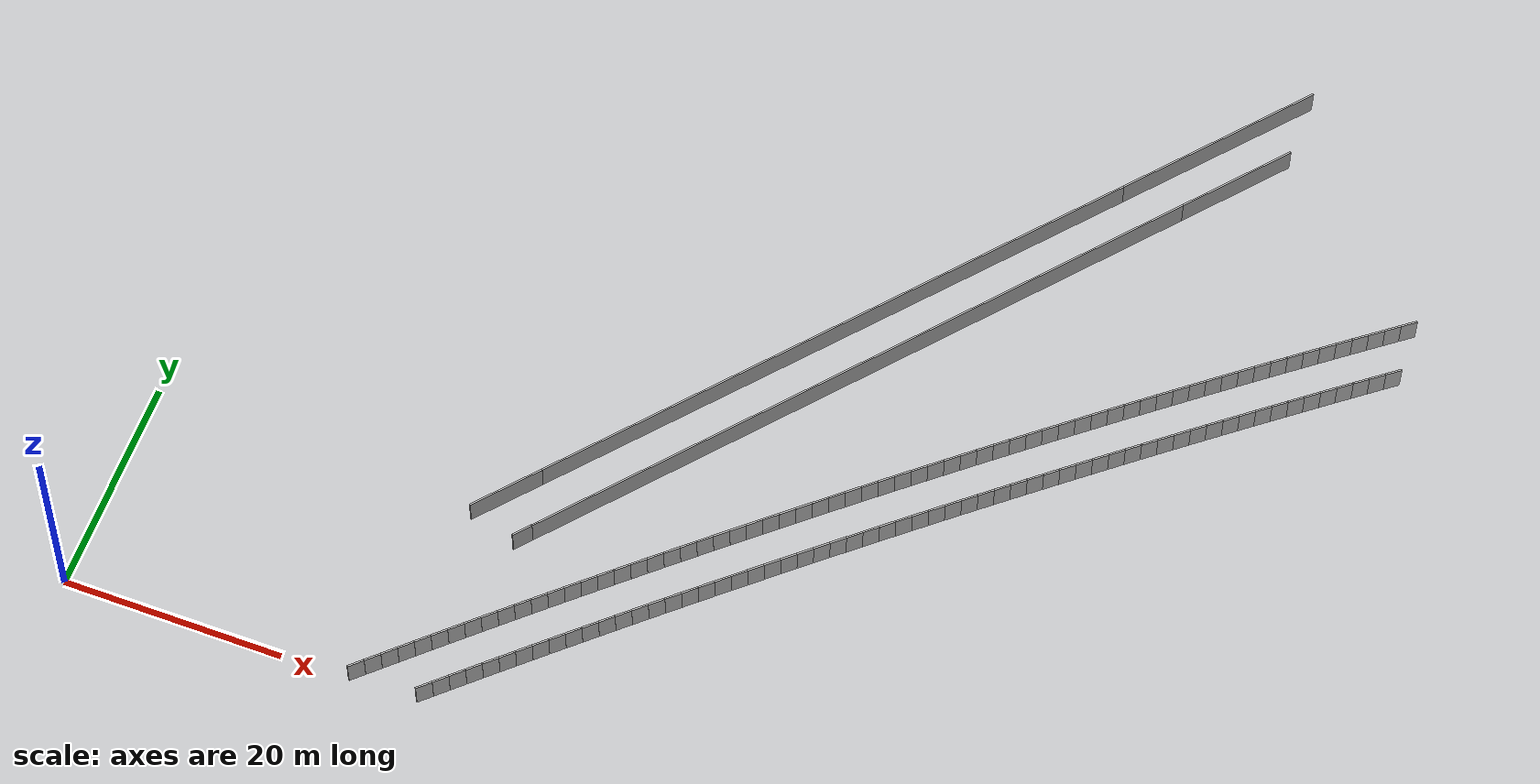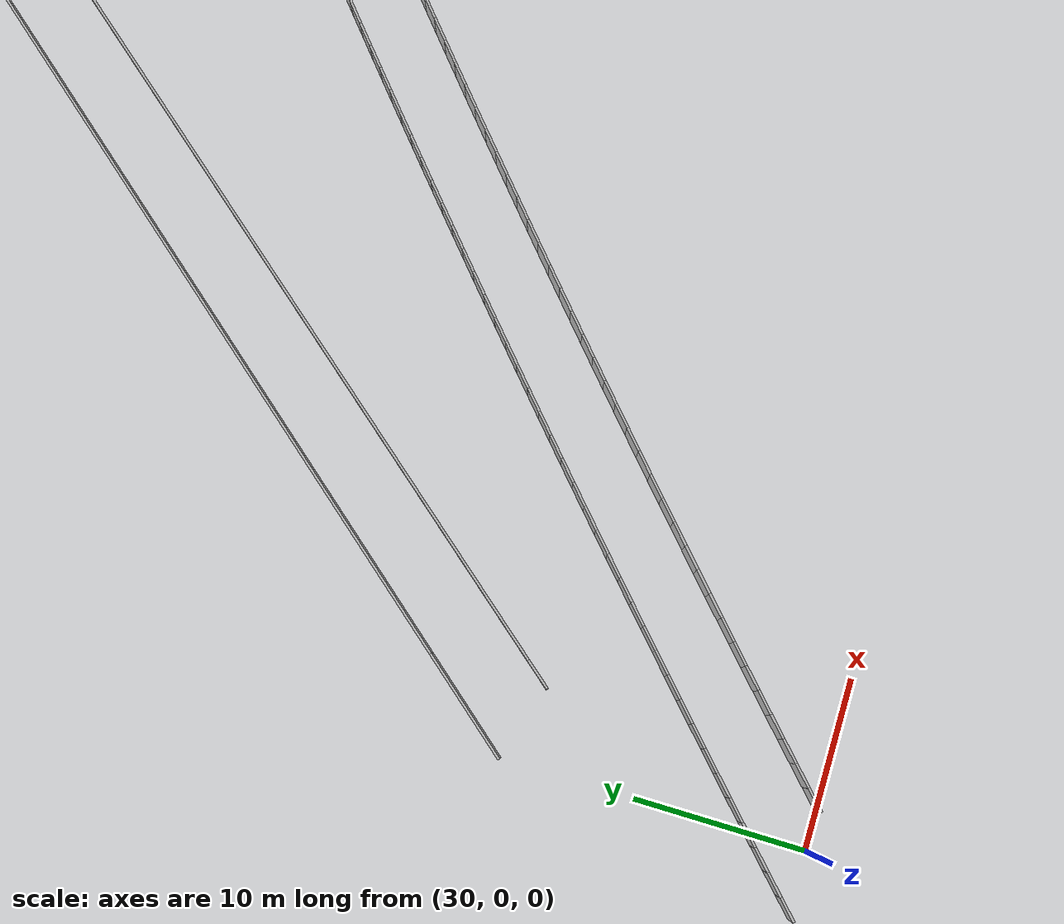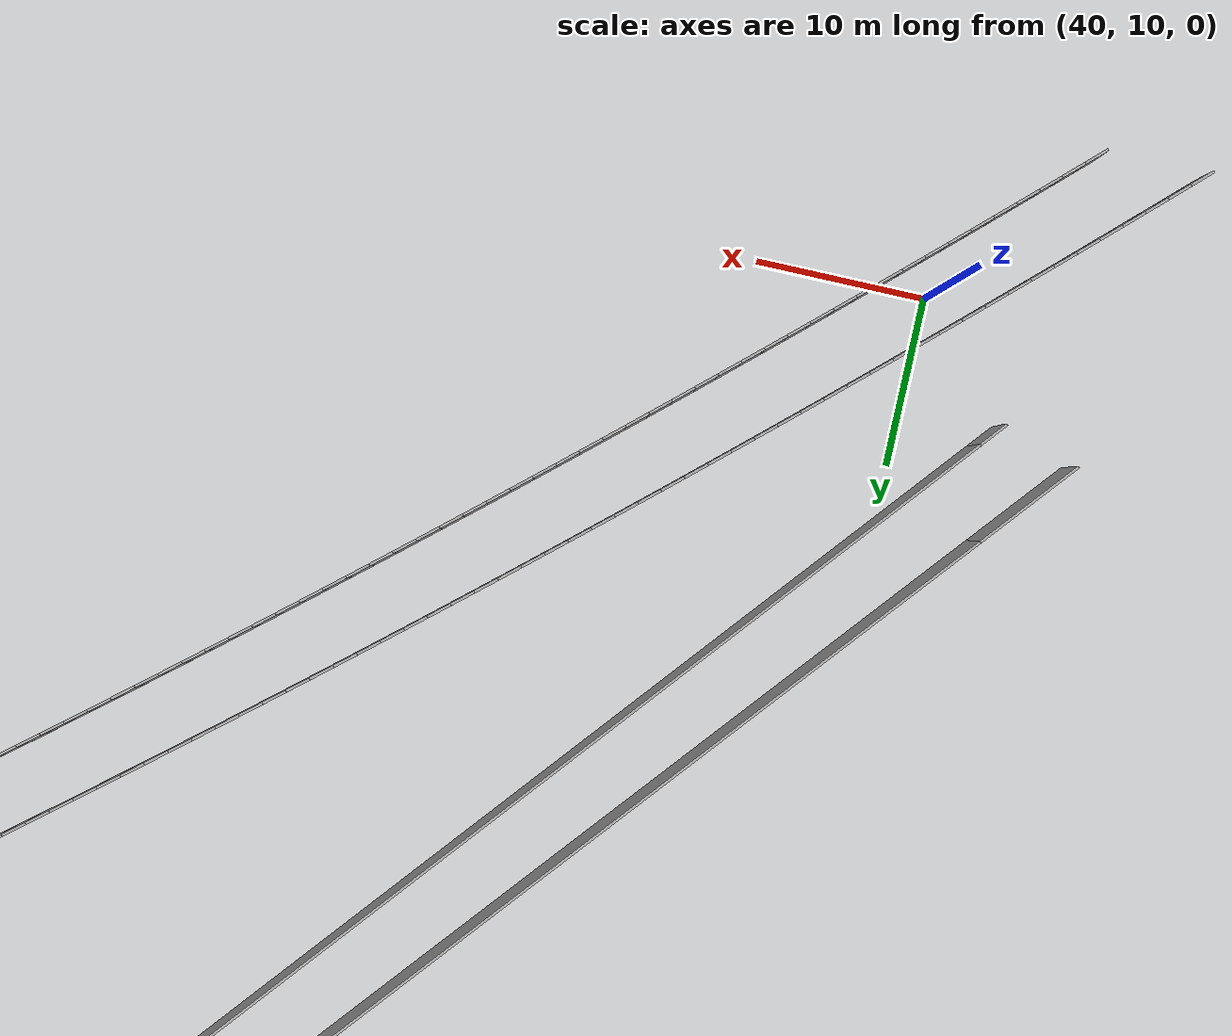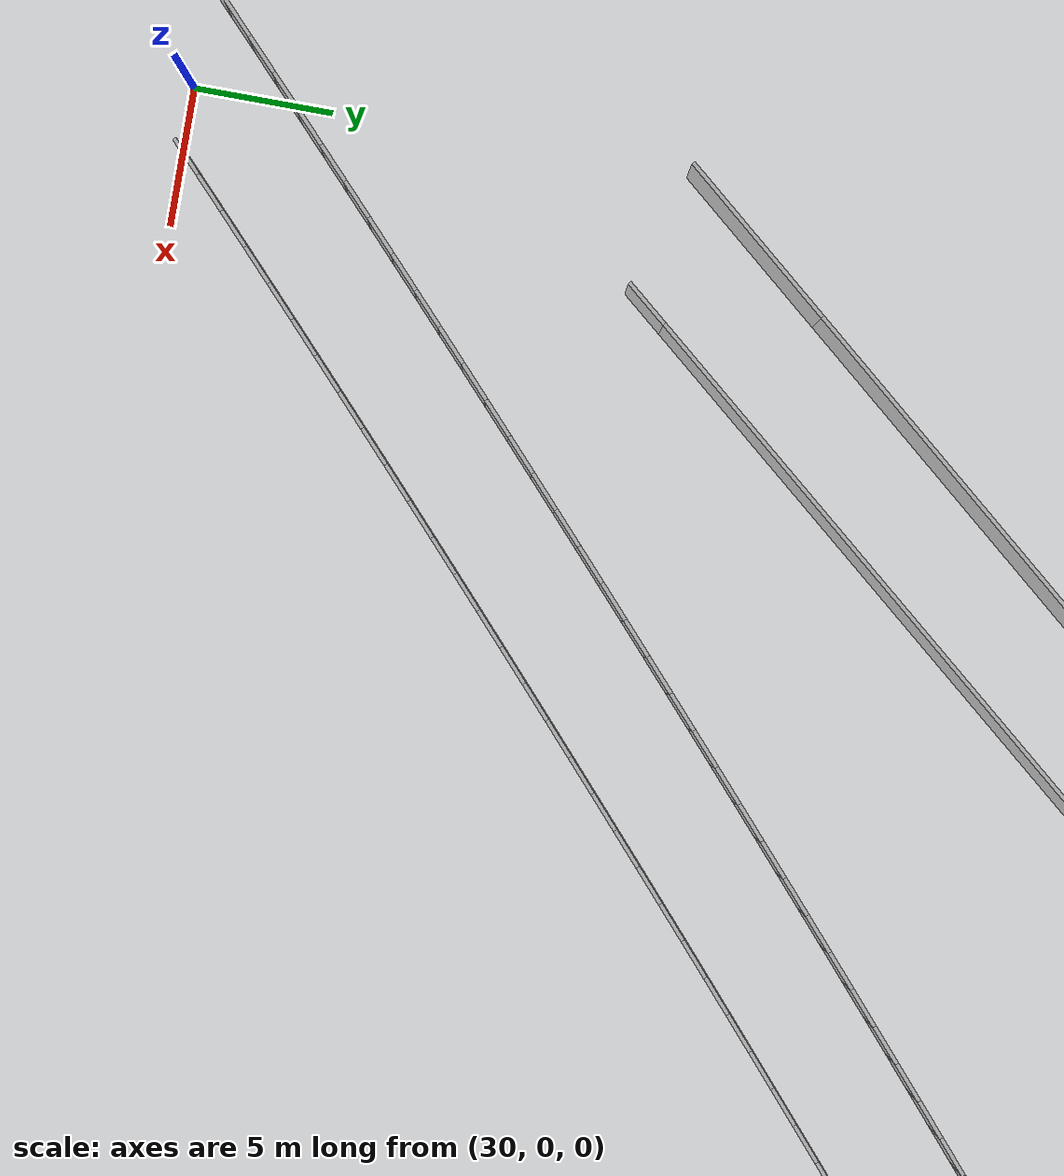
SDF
<sdf version="1.6">
 <model name="sps_0521">
  <static>1</static>
  <allow_auto_disable>0</allow_auto_disable>
  <link name="Wall213">
   <collision name="collision"><geometry><box><size>19.7398 0.15 2.5</size></box></geometry></collision>
   <visual name="visual">
    <geometry><box><size>19.7398 0.15 2.5</size></box></geometry>
    <transparency>0.0</transparency>
   </visual>
   <pose>78.1377 75.4643 1.25 0 0 -2.26727</pose>
  </link>
  <link name="Wall214">
   <collision name="collision"><geometry><box><size>58.2001 0.15 2.5</size></box></geometry></collision>
   <visual name="visual">
    <geometry><box><size>58.2001 0.15 2.5</size></box></geometry>
    <transparency>0.0</transparency>
   </visual>
   <pose>53.1377 45.5702 1.25 0 0 -2.26727</pose>
  </link>
  <link name="Wall215">
   <collision name="collision"><geometry><box><size>6.97983 0.15 2.5</size></box></geometry></collision>
   <visual name="visual">
    <geometry><box><size>6.97983 0.15 2.5</size></box></geometry>
    <transparency>0.0</transparency>
   </visual>
   <pose>32.2306 20.5702 1.25 0 0 -2.26727</pose>
  </link>
  <link name="Wall219">
   <collision name="collision"><geometry><box><size>1.88109 0.15 2.5</size></box></geometry></collision>
   <visual name="visual">
    <geometry><box><size>1.88109 0.15 2.5</size></box></geometry>
    <transparency>0.0</transparency>
   </visual>
   <pose>35.0712 17.1703 1.25 0 -0 0.876505</pose>
  </link>
  <link name="Wall220">
   <collision name="collision"><geometry><box><size>65.0612 0.15 2.5</size></box></geometry></collision>
   <visual name="visual">
    <geometry><box><size>65.0612 0.15 2.5</size></box></geometry>
    <transparency>0.0</transparency>
   </visual>
   <pose>56.4874 42.8931 1.25 0 -0 0.876505</pose>
  </link>
  <link name="Wall221">
   <collision name="collision"><geometry><box><size>11.2021 0.15 2.5</size></box></geometry></collision>
   <visual name="visual">
    <geometry><box><size>11.2021 0.15 2.5</size></box></geometry>
    <transparency>0.0</transparency>
   </visual>
   <pose>80.8857 72.1975 1.25 0 -0 0.876505</pose>
  </link>
  <link name="Wall3323">
   <collision name="collision"><geometry><box><size>1.49661 0.15 2.5</size></box></geometry></collision>
   <visual name="visual">
    <geometry><box><size>1.49661 0.15 2.5</size></box></geometry>
    <transparency>0.0</transparency>
   </visual>
   <pose>99.7113 58.1817 1.25 0 0 -2.47688</pose>
  </link>
  <link name="Wall3324">
   <collision name="collision"><geometry><box><size>1.4965 0.15 2.5</size></box></geometry></collision>
   <visual name="visual">
    <geometry><box><size>1.4965 0.15 2.5</size></box></geometry>
    <transparency>0.0</transparency>
   </visual>
   <pose>98.5341 57.2576 1.25 0 0 -2.47527</pose>
  </link>
  <link name="Wall3325">
   <collision name="collision"><geometry><box><size>1.49638 0.15 2.5</size></box></geometry></collision>
   <visual name="visual">
    <geometry><box><size>1.49638 0.15 2.5</size></box></geometry>
    <transparency>0.0</transparency>
   </visual>
   <pose>97.3585 56.3317 1.25 0 0 -2.47365</pose>
  </link>
  <link name="Wall3326">
   <collision name="collision"><geometry><box><size>1.49672 0.15 2.5</size></box></geometry></collision>
   <visual name="visual">
    <geometry><box><size>1.49672 0.15 2.5</size></box></geometry>
    <transparency>0.0</transparency>
   </visual>
   <pose>96.1843 55.4039 1.25 0 0 -2.47211</pose>
  </link>
  <link name="Wall3327">
   <collision name="collision"><geometry><box><size>1.49653 0.15 2.5</size></box></geometry></collision>
   <visual name="visual">
    <geometry><box><size>1.49653 0.15 2.5</size></box></geometry>
    <transparency>0.0</transparency>
   </visual>
   <pose>95.0114 54.4742 1.25 0 0 -2.4705</pose>
  </link>
  <link name="Wall3328">
   <collision name="collision"><geometry><box><size>1.49639 0.15 2.5</size></box></geometry></collision>
   <visual name="visual">
    <geometry><box><size>1.49639 0.15 2.5</size></box></geometry>
    <transparency>0.0</transparency>
   </visual>
   <pose>93.8402 53.5427 1.25 0 0 -2.46892</pose>
  </link>
  <link name="Wall3329">
   <collision name="collision"><geometry><box><size>1.4965 0.15 2.5</size></box></geometry></collision>
   <visual name="visual">
    <geometry><box><size>1.4965 0.15 2.5</size></box></geometry>
    <transparency>0.0</transparency>
   </visual>
   <pose>92.6706 52.6093 1.25 0 0 -2.46725</pose>
  </link>
  <link name="Wall3330">
   <collision name="collision"><geometry><box><size>1.4966 0.15 2.5</size></box></geometry></collision>
   <visual name="visual">
    <geometry><box><size>1.4966 0.15 2.5</size></box></geometry>
    <transparency>0.0</transparency>
   </visual>
   <pose>91.5023 51.674 1.25 0 0 -2.46574</pose>
  </link>
  <link name="Wall3331">
   <collision name="collision"><geometry><box><size>1.49647 0.15 2.5</size></box></geometry></collision>
   <visual name="visual">
    <geometry><box><size>1.49647 0.15 2.5</size></box></geometry>
    <transparency>0.0</transparency>
   </visual>
   <pose>90.3355 50.7369 1.25 0 0 -2.46415</pose>
  </link>
  <link name="Wall3332">
   <collision name="collision"><geometry><box><size>1.49638 0.15 2.5</size></box></geometry></collision>
   <visual name="visual">
    <geometry><box><size>1.49638 0.15 2.5</size></box></geometry>
    <transparency>0.0</transparency>
   </visual>
   <pose>89.1702 49.798 1.25 0 0 -2.46253</pose>
  </link>
  <link name="Wall3333">
   <collision name="collision"><geometry><box><size>1.49654 0.15 2.5</size></box></geometry></collision>
   <visual name="visual">
    <geometry><box><size>1.49654 0.15 2.5</size></box></geometry>
    <transparency>0.0</transparency>
   </visual>
   <pose>88.0064 48.8573 1.25 0 0 -2.4611</pose>
  </link>
  <link name="Wall3334">
   <collision name="collision"><geometry><box><size>1.49653 0.15 2.5</size></box></geometry></collision>
   <visual name="visual">
    <geometry><box><size>1.49653 0.15 2.5</size></box></geometry>
    <transparency>0.0</transparency>
   </visual>
   <pose>86.844 47.9147 1.25 0 0 -2.45936</pose>
  </link>
  <link name="Wall3335">
   <collision name="collision"><geometry><box><size>1.49647 0.15 2.5</size></box></geometry></collision>
   <visual name="visual">
    <geometry><box><size>1.49647 0.15 2.5</size></box></geometry>
    <transparency>0.0</transparency>
   </visual>
   <pose>85.6832 46.9702 1.25 0 0 -2.4578</pose>
  </link>
  <link name="Wall3336">
   <collision name="collision"><geometry><box><size>1.49649 0.15 2.5</size></box></geometry></collision>
   <visual name="visual">
    <geometry><box><size>1.49649 0.15 2.5</size></box></geometry>
    <transparency>0.0</transparency>
   </visual>
   <pose>84.5239 46.0239 1.25 0 0 -2.45623</pose>
  </link>
  <link name="Wall3337">
   <collision name="collision"><geometry><box><size>1.49642 0.15 2.5</size></box></geometry></collision>
   <visual name="visual">
    <geometry><box><size>1.49642 0.15 2.5</size></box></geometry>
    <transparency>0.0</transparency>
   </visual>
   <pose>83.3662 45.0758 1.25 0 0 -2.45461</pose>
  </link>
  <link name="Wall3338">
   <collision name="collision"><geometry><box><size>1.49651 0.15 2.5</size></box></geometry></collision>
   <visual name="visual">
    <geometry><box><size>1.49651 0.15 2.5</size></box></geometry>
    <transparency>0.0</transparency>
   </visual>
   <pose>82.2099 44.1259 1.25 0 0 -2.45313</pose>
  </link>
  <link name="Wall3339">
   <collision name="collision"><geometry><box><size>1.49648 0.15 2.5</size></box></geometry></collision>
   <visual name="visual">
    <geometry><box><size>1.49648 0.15 2.5</size></box></geometry>
    <transparency>0.0</transparency>
   </visual>
   <pose>81.055 43.1741 1.25 0 0 -2.45142</pose>
  </link>
  <link name="Wall3340">
   <collision name="collision"><geometry><box><size>1.49656 0.15 2.5</size></box></geometry></collision>
   <visual name="visual">
    <geometry><box><size>1.49656 0.15 2.5</size></box></geometry>
    <transparency>0.0</transparency>
   </visual>
   <pose>79.9018 42.2204 1.25 0 0 -2.44988</pose>
  </link>
  <link name="Wall3341">
   <collision name="collision"><geometry><box><size>1.49653 0.15 2.5</size></box></geometry></collision>
   <visual name="visual">
    <geometry><box><size>1.49653 0.15 2.5</size></box></geometry>
    <transparency>0.0</transparency>
   </visual>
   <pose>78.7499 41.265 1.25 0 0 -2.44844</pose>
  </link>
  <link name="Wall3342">
   <collision name="collision"><geometry><box><size>1.49617 0.15 2.5</size></box></geometry></collision>
   <visual name="visual">
    <geometry><box><size>1.49617 0.15 2.5</size></box></geometry>
    <transparency>0.0</transparency>
   </visual>
   <pose>77.5995 40.3081 1.25 0 0 -2.44707</pose>
  </link>
  <link name="Wall3343">
   <collision name="collision"><geometry><box><size>1.4965 0.15 2.5</size></box></geometry></collision>
   <visual name="visual">
    <geometry><box><size>1.4965 0.15 2.5</size></box></geometry>
    <transparency>0.0</transparency>
   </visual>
   <pose>76.4508 39.3492 1.25 0 0 -2.44496</pose>
  </link>
  <link name="Wall3344">
   <collision name="collision"><geometry><box><size>1.49644 0.15 2.5</size></box></geometry></collision>
   <visual name="visual">
    <geometry><box><size>1.49644 0.15 2.5</size></box></geometry>
    <transparency>0.0</transparency>
   </visual>
   <pose>75.3036 38.3882 1.25 0 0 -2.44355</pose>
  </link>
  <link name="Wall3345">
   <collision name="collision"><geometry><box><size>1.4965 0.15 2.5</size></box></geometry></collision>
   <visual name="visual">
    <geometry><box><size>1.4965 0.15 2.5</size></box></geometry>
    <transparency>0.0</transparency>
   </visual>
   <pose>74.158 37.4255 1.25 0 0 -2.44198</pose>
  </link>
  <link name="Wall3346">
   <collision name="collision"><geometry><box><size>1.49659 0.15 2.5</size></box></geometry></collision>
   <visual name="visual">
    <geometry><box><size>1.49659 0.15 2.5</size></box></geometry>
    <transparency>0.0</transparency>
   </visual>
   <pose>73.0138 36.4609 1.25 0 0 -2.44033</pose>
  </link>
  <link name="Wall3347">
   <collision name="collision"><geometry><box><size>1.49653 0.15 2.5</size></box></geometry></collision>
   <visual name="visual">
    <geometry><box><size>1.49653 0.15 2.5</size></box></geometry>
    <transparency>0.0</transparency>
   </visual>
   <pose>71.8711 35.4945 1.25 0 0 -2.43885</pose>
  </link>
  <link name="Wall3348">
   <collision name="collision"><geometry><box><size>1.49652 0.15 2.5</size></box></geometry></collision>
   <visual name="visual">
    <geometry><box><size>1.49652 0.15 2.5</size></box></geometry>
    <transparency>0.0</transparency>
   </visual>
   <pose>70.7299 34.5264 1.25 0 0 -2.43729</pose>
  </link>
  <link name="Wall3349">
   <collision name="collision"><geometry><box><size>1.49657 0.15 2.5</size></box></geometry></collision>
   <visual name="visual">
    <geometry><box><size>1.49657 0.15 2.5</size></box></geometry>
    <transparency>0.0</transparency>
   </visual>
   <pose>69.5902 33.5564 1.25 0 0 -2.43555</pose>
  </link>
  <link name="Wall3350">
   <collision name="collision"><geometry><box><size>1.49639 0.15 2.5</size></box></geometry></collision>
   <visual name="visual">
    <geometry><box><size>1.49639 0.15 2.5</size></box></geometry>
    <transparency>0.0</transparency>
   </visual>
   <pose>68.4522 32.5846 1.25 0 0 -2.43406</pose>
  </link>
  <link name="Wall3351">
   <collision name="collision"><geometry><box><size>1.49659 0.15 2.5</size></box></geometry></collision>
   <visual name="visual">
    <geometry><box><size>1.49659 0.15 2.5</size></box></geometry>
    <transparency>0.0</transparency>
   </visual>
   <pose>67.3158 31.611 1.25 0 0 -2.4324</pose>
  </link>
  <link name="Wall3352">
   <collision name="collision"><geometry><box><size>1.49646 0.15 2.5</size></box></geometry></collision>
   <visual name="visual">
    <geometry><box><size>1.49646 0.15 2.5</size></box></geometry>
    <transparency>0.0</transparency>
   </visual>
   <pose>66.1808 30.6356 1.25 0 0 -2.43093</pose>
  </link>
  <link name="Wall3353">
   <collision name="collision"><geometry><box><size>1.49642 0.15 2.5</size></box></geometry></collision>
   <visual name="visual">
    <geometry><box><size>1.49642 0.15 2.5</size></box></geometry>
    <transparency>0.0</transparency>
   </visual>
   <pose>65.0474 29.6585 1.25 0 0 -2.42934</pose>
  </link>
  <link name="Wall3354">
   <collision name="collision"><geometry><box><size>1.49651 0.15 2.5</size></box></geometry></collision>
   <visual name="visual">
    <geometry><box><size>1.49651 0.15 2.5</size></box></geometry>
    <transparency>0.0</transparency>
   </visual>
   <pose>63.9155 28.6796 1.25 0 0 -2.42778</pose>
  </link>
  <link name="Wall3355">
   <collision name="collision"><geometry><box><size>1.49649 0.15 2.5</size></box></geometry></collision>
   <visual name="visual">
    <geometry><box><size>1.49649 0.15 2.5</size></box></geometry>
    <transparency>0.0</transparency>
   </visual>
   <pose>62.7852 27.6988 1.25 0 0 -2.42599</pose>
  </link>
  <link name="Wall3356">
   <collision name="collision"><geometry><box><size>1.49652 0.15 2.5</size></box></geometry></collision>
   <visual name="visual">
    <geometry><box><size>1.49652 0.15 2.5</size></box></geometry>
    <transparency>0.0</transparency>
   </visual>
   <pose>61.6565 26.7162 1.25 0 0 -2.4246</pose>
  </link>
  <link name="Wall3357">
   <collision name="collision"><geometry><box><size>1.49648 0.15 2.5</size></box></geometry></collision>
   <visual name="visual">
    <geometry><box><size>1.49648 0.15 2.5</size></box></geometry>
    <transparency>0.0</transparency>
   </visual>
   <pose>60.5292 25.7319 1.25 0 0 -2.42295</pose>
  </link>
  <link name="Wall3358">
   <collision name="collision"><geometry><box><size>1.49659 0.15 2.5</size></box></geometry></collision>
   <visual name="visual">
    <geometry><box><size>1.49659 0.15 2.5</size></box></geometry>
    <transparency>0.0</transparency>
   </visual>
   <pose>59.4035 24.7458 1.25 0 0 -2.42144</pose>
  </link>
  <link name="Wall3359">
   <collision name="collision"><geometry><box><size>1.49639 0.15 2.5</size></box></geometry></collision>
   <visual name="visual">
    <geometry><box><size>1.49639 0.15 2.5</size></box></geometry>
    <transparency>0.0</transparency>
   </visual>
   <pose>58.2794 23.7579 1.25 0 0 -2.41975</pose>
  </link>
  <link name="Wall3360">
   <collision name="collision"><geometry><box><size>1.49659 0.15 2.5</size></box></geometry></collision>
   <visual name="visual">
    <geometry><box><size>1.49659 0.15 2.5</size></box></geometry>
    <transparency>0.0</transparency>
   </visual>
   <pose>57.1569 22.7682 1.25 0 0 -2.41824</pose>
  </link>
  <link name="Wall3361">
   <collision name="collision"><geometry><box><size>1.49641 0.15 2.5</size></box></geometry></collision>
   <visual name="visual">
    <geometry><box><size>1.49641 0.15 2.5</size></box></geometry>
    <transparency>0.0</transparency>
   </visual>
   <pose>56.0359 21.7768 1.25 0 0 -2.41671</pose>
  </link>
  <link name="Wall3362">
   <collision name="collision"><geometry><box><size>1.49656 0.15 2.5</size></box></geometry></collision>
   <visual name="visual">
    <geometry><box><size>1.49656 0.15 2.5</size></box></geometry>
    <transparency>0.0</transparency>
   </visual>
   <pose>54.9166 20.7836 1.25 0 0 -2.415</pose>
  </link>
  <link name="Wall3363">
   <collision name="collision"><geometry><box><size>1.49647 0.15 2.5</size></box></geometry></collision>
   <visual name="visual">
    <geometry><box><size>1.49647 0.15 2.5</size></box></geometry>
    <transparency>0.0</transparency>
   </visual>
   <pose>53.7988 19.7886 1.25 0 0 -2.41347</pose>
  </link>
  <link name="Wall3364">
   <collision name="collision"><geometry><box><size>1.49654 0.15 2.5</size></box></geometry></collision>
   <visual name="visual">
    <geometry><box><size>1.49654 0.15 2.5</size></box></geometry>
    <transparency>0.0</transparency>
   </visual>
   <pose>52.6825 18.7918 1.25 0 0 -2.41182</pose>
  </link>
  <link name="Wall3365">
   <collision name="collision"><geometry><box><size>1.49646 0.15 2.5</size></box></geometry></collision>
   <visual name="visual">
    <geometry><box><size>1.49646 0.15 2.5</size></box></geometry>
    <transparency>0.0</transparency>
   </visual>
   <pose>51.568 17.7932 1.25 0 0 -2.41024</pose>
  </link>
  <link name="Wall3366">
   <collision name="collision"><geometry><box><size>1.49646 0.15 2.5</size></box></geometry></collision>
   <visual name="visual">
    <geometry><box><size>1.49646 0.15 2.5</size></box></geometry>
    <transparency>0.0</transparency>
   </visual>
   <pose>50.4549 16.7929 1.25 0 0 -2.40871</pose>
  </link>
  <link name="Wall3367">
   <collision name="collision"><geometry><box><size>1.4966 0.15 2.5</size></box></geometry></collision>
   <visual name="visual">
    <geometry><box><size>1.4966 0.15 2.5</size></box></geometry>
    <transparency>0.0</transparency>
   </visual>
   <pose>49.3434 15.7908 1.25 0 0 -2.40714</pose>
  </link>
  <link name="Wall3368">
   <collision name="collision"><geometry><box><size>1.4964 0.15 2.5</size></box></geometry></collision>
   <visual name="visual">
    <geometry><box><size>1.4964 0.15 2.5</size></box></geometry>
    <transparency>0.0</transparency>
   </visual>
   <pose>48.2335 14.787 1.25 0 0 -2.40553</pose>
  </link>
  <link name="Wall3369">
   <collision name="collision"><geometry><box><size>1.49667 0.15 2.5</size></box></geometry></collision>
   <visual name="visual">
    <geometry><box><size>1.49667 0.15 2.5</size></box></geometry>
    <transparency>0.0</transparency>
   </visual>
   <pose>47.1252 13.7814 1.25 0 0 -2.40394</pose>
  </link>
  <link name="Wall3370">
   <collision name="collision"><geometry><box><size>1.49638 0.15 2.5</size></box></geometry></collision>
   <visual name="visual">
    <geometry><box><size>1.49638 0.15 2.5</size></box></geometry>
    <transparency>0.0</transparency>
   </visual>
   <pose>46.0185 12.774 1.25 0 0 -2.40233</pose>
  </link>
  <link name="Wall3371">
   <collision name="collision"><geometry><box><size>1.49663 0.15 2.5</size></box></geometry></collision>
   <visual name="visual">
    <geometry><box><size>1.49663 0.15 2.5</size></box></geometry>
    <transparency>0.0</transparency>
   </visual>
   <pose>44.9134 11.7649 1.25 0 0 -2.40082</pose>
  </link>
  <link name="Wall3372">
   <collision name="collision"><geometry><box><size>1.49635 0.15 2.5</size></box></geometry></collision>
   <visual name="visual">
    <geometry><box><size>1.49635 0.15 2.5</size></box></geometry>
    <transparency>0.0</transparency>
   </visual>
   <pose>43.8099 10.7541 1.25 0 0 -2.39921</pose>
  </link>
  <link name="Wall3373">
   <collision name="collision"><geometry><box><size>1.49655 0.15 2.5</size></box></geometry></collision>
   <visual name="visual">
    <geometry><box><size>1.49655 0.15 2.5</size></box></geometry>
    <transparency>0.0</transparency>
   </visual>
   <pose>42.708 9.74159 1.25 0 0 -2.39768</pose>
  </link>
  <link name="Wall3374">
   <collision name="collision"><geometry><box><size>1.49641 0.15 2.5</size></box></geometry></collision>
   <visual name="visual">
    <geometry><box><size>1.49641 0.15 2.5</size></box></geometry>
    <transparency>0.0</transparency>
   </visual>
   <pose>41.6077 8.72728 1.25 0 0 -2.39598</pose>
  </link>
  <link name="Wall3375">
   <collision name="collision"><geometry><box><size>1.49621 0.15 2.5</size></box></geometry></collision>
   <visual name="visual">
    <geometry><box><size>1.49621 0.15 2.5</size></box></geometry>
    <transparency>0.0</transparency>
   </visual>
   <pose>40.5091 7.7115 1.25 0 0 -2.3948</pose>
  </link>
  <link name="Wall3376">
   <collision name="collision"><geometry><box><size>1.4964 0.15 2.5</size></box></geometry></collision>
   <visual name="visual">
    <geometry><box><size>1.4964 0.15 2.5</size></box></geometry>
    <transparency>0.0</transparency>
   </visual>
   <pose>39.4119 6.69401 1.25 0 0 -2.39286</pose>
  </link>
  <link name="Wall3377">
   <collision name="collision"><geometry><box><size>1.49674 0.15 2.5</size></box></geometry></collision>
   <visual name="visual">
    <geometry><box><size>1.49674 0.15 2.5</size></box></geometry>
    <transparency>0.0</transparency>
   </visual>
   <pose>38.3165 5.67439 1.25 0 0 -2.39124</pose>
  </link>
  <link name="Wall3378">
   <collision name="collision"><geometry><box><size>1.49637 0.15 2.5</size></box></geometry></collision>
   <visual name="visual">
    <geometry><box><size>1.49637 0.15 2.5</size></box></geometry>
    <transparency>0.0</transparency>
   </visual>
   <pose>37.2226 4.65309 1.25 0 0 -2.38977</pose>
  </link>
  <link name="Wall3379">
   <collision name="collision"><geometry><box><size>1.49654 0.15 2.5</size></box></geometry></collision>
   <visual name="visual">
    <geometry><box><size>1.49654 0.15 2.5</size></box></geometry>
    <transparency>0.0</transparency>
   </visual>
   <pose>36.1304 3.63011 1.25 0 0 -2.38804</pose>
  </link>
  <link name="Wall3380">
   <collision name="collision"><geometry><box><size>1.49643 0.15 2.5</size></box></geometry></collision>
   <visual name="visual">
    <geometry><box><size>1.49643 0.15 2.5</size></box></geometry>
    <transparency>0.0</transparency>
   </visual>
   <pose>35.0398 2.60539 1.25 0 0 -2.38663</pose>
  </link>
  <link name="Wall3381">
   <collision name="collision"><geometry><box><size>1.49635 0.15 2.5</size></box></geometry></collision>
   <visual name="visual">
    <geometry><box><size>1.49635 0.15 2.5</size></box></geometry>
    <transparency>0.0</transparency>
   </visual>
   <pose>33.9509 1.57899 1.25 0 0 -2.38484</pose>
  </link>
  <link name="Wall3382">
   <collision name="collision"><geometry><box><size>1.49638 0.15 2.5</size></box></geometry></collision>
   <visual name="visual">
    <geometry><box><size>1.49638 0.15 2.5</size></box></geometry>
    <transparency>0.0</transparency>
   </visual>
   <pose>32.8636 0.550918 1.25 0 0 -2.38351</pose>
  </link>
  <link name="Wall5932">
   <collision name="collision"><geometry><box><size>1.50311 0.15 2.5</size></box></geometry></collision>
   <visual name="visual">
    <geometry><box><size>1.50311 0.15 2.5</size></box></geometry>
    <transparency>0.0</transparency>
   </visual>
   <pose>99.5163 63.283 1.25 0 0 -2.48006</pose>
  </link>
  <link name="Wall5933">
   <collision name="collision"><geometry><box><size>1.50305 0.15 2.5</size></box></geometry></collision>
   <visual name="visual">
    <geometry><box><size>1.50305 0.15 2.5</size></box></geometry>
    <transparency>0.0</transparency>
   </visual>
   <pose>98.331 62.3586 1.25 0 0 -2.47833</pose>
  </link>
  <link name="Wall5934">
   <collision name="collision"><geometry><box><size>1.50315 0.15 2.5</size></box></geometry></collision>
   <visual name="visual">
    <geometry><box><size>1.50315 0.15 2.5</size></box></geometry>
    <transparency>0.0</transparency>
   </visual>
   <pose>97.1474 61.4322 1.25 0 0 -2.47673</pose>
  </link>
  <link name="Wall5935">
   <collision name="collision"><geometry><box><size>1.50323 0.15 2.5</size></box></geometry></collision>
   <visual name="visual">
    <geometry><box><size>1.50323 0.15 2.5</size></box></geometry>
    <transparency>0.0</transparency>
   </visual>
   <pose>95.965 60.5039 1.25 0 0 -2.47522</pose>
  </link>
  <link name="Wall5936">
   <collision name="collision"><geometry><box><size>1.50295 0.15 2.5</size></box></geometry></collision>
   <visual name="visual">
    <geometry><box><size>1.50295 0.15 2.5</size></box></geometry>
    <transparency>0.0</transparency>
   </visual>
   <pose>94.7842 59.5739 1.25 0 0 -2.47368</pose>
  </link>
  <link name="Wall5937">
   <collision name="collision"><geometry><box><size>1.5032 0.15 2.5</size></box></geometry></collision>
   <visual name="visual">
    <geometry><box><size>1.5032 0.15 2.5</size></box></geometry>
    <transparency>0.0</transparency>
   </visual>
   <pose>93.6049 58.6421 1.25 0 0 -2.47216</pose>
  </link>
  <link name="Wall5938">
   <collision name="collision"><geometry><box><size>1.50303 0.15 2.5</size></box></geometry></collision>
   <visual name="visual">
    <geometry><box><size>1.50303 0.15 2.5</size></box></geometry>
    <transparency>0.0</transparency>
   </visual>
   <pose>92.427 57.7083 1.25 0 0 -2.47041</pose>
  </link>
  <link name="Wall5939">
   <collision name="collision"><geometry><box><size>1.50311 0.15 2.5</size></box></geometry></collision>
   <visual name="visual">
    <geometry><box><size>1.50311 0.15 2.5</size></box></geometry>
    <transparency>0.0</transparency>
   </visual>
   <pose>91.2507 56.7726 1.25 0 0 -2.46884</pose>
  </link>
  <link name="Wall5940">
   <collision name="collision"><geometry><box><size>1.50293 0.15 2.5</size></box></geometry></collision>
   <visual name="visual">
    <geometry><box><size>1.50293 0.15 2.5</size></box></geometry>
    <transparency>0.0</transparency>
   </visual>
   <pose>90.0759 55.8351 1.25 0 0 -2.4673</pose>
  </link>
  <link name="Wall5941">
   <collision name="collision"><geometry><box><size>1.50302 0.15 2.5</size></box></geometry></collision>
   <visual name="visual">
    <geometry><box><size>1.50302 0.15 2.5</size></box></geometry>
    <transparency>0.0</transparency>
   </visual>
   <pose>88.9025 54.8958 1.25 0 0 -2.46573</pose>
  </link>
  <link name="Wall5942">
   <collision name="collision"><geometry><box><size>1.50315 0.15 2.5</size></box></geometry></collision>
   <visual name="visual">
    <geometry><box><size>1.50315 0.15 2.5</size></box></geometry>
    <transparency>0.0</transparency>
   </visual>
   <pose>87.7306 53.9546 1.25 0 0 -2.46413</pose>
  </link>
  <link name="Wall5943">
   <collision name="collision"><geometry><box><size>1.50317 0.15 2.5</size></box></geometry></collision>
   <visual name="visual">
    <geometry><box><size>1.50317 0.15 2.5</size></box></geometry>
    <transparency>0.0</transparency>
   </visual>
   <pose>86.5601 53.0115 1.25 0 0 -2.46263</pose>
  </link>
  <link name="Wall5944">
   <collision name="collision"><geometry><box><size>1.5032 0.15 2.5</size></box></geometry></collision>
   <visual name="visual">
    <geometry><box><size>1.5032 0.15 2.5</size></box></geometry>
    <transparency>0.0</transparency>
   </visual>
   <pose>85.3911 52.0665 1.25 0 0 -2.46092</pose>
  </link>
  <link name="Wall5945">
   <collision name="collision"><geometry><box><size>1.50296 0.15 2.5</size></box></geometry></collision>
   <visual name="visual">
    <geometry><box><size>1.50296 0.15 2.5</size></box></geometry>
    <transparency>0.0</transparency>
   </visual>
   <pose>84.2237 51.1197 1.25 0 0 -2.45938</pose>
  </link>
  <link name="Wall5946">
   <collision name="collision"><geometry><box><size>1.50315 0.15 2.5</size></box></geometry></collision>
   <visual name="visual">
    <geometry><box><size>1.50315 0.15 2.5</size></box></geometry>
    <transparency>0.0</transparency>
   </visual>
   <pose>83.0579 50.1711 1.25 0 0 -2.45781</pose>
  </link>
  <link name="Wall5947">
   <collision name="collision"><geometry><box><size>1.50317 0.15 2.5</size></box></geometry></collision>
   <visual name="visual">
    <geometry><box><size>1.50317 0.15 2.5</size></box></geometry>
    <transparency>0.0</transparency>
   </visual>
   <pose>81.8934 49.2206 1.25 0 0 -2.45625</pose>
  </link>
  <link name="Wall5948">
   <collision name="collision"><geometry><box><size>1.50297 0.15 2.5</size></box></geometry></collision>
   <visual name="visual">
    <geometry><box><size>1.50297 0.15 2.5</size></box></geometry>
    <transparency>0.0</transparency>
   </visual>
   <pose>80.7305 48.2683 1.25 0 0 -2.45462</pose>
  </link>
  <link name="Wall5949">
   <collision name="collision"><geometry><box><size>1.503 0.15 2.5</size></box></geometry></collision>
   <visual name="visual">
    <geometry><box><size>1.503 0.15 2.5</size></box></geometry>
    <transparency>0.0</transparency>
   </visual>
   <pose>79.5691 47.3142 1.25 0 0 -2.45306</pose>
  </link>
  <link name="Wall5950">
   <collision name="collision"><geometry><box><size>1.50316 0.15 2.5</size></box></geometry></collision>
   <visual name="visual">
    <geometry><box><size>1.50316 0.15 2.5</size></box></geometry>
    <transparency>0.0</transparency>
   </visual>
   <pose>78.4093 46.3582 1.25 0 0 -2.45146</pose>
  </link>
  <link name="Wall5951">
   <collision name="collision"><geometry><box><size>1.5031 0.15 2.5</size></box></geometry></collision>
   <visual name="visual">
    <geometry><box><size>1.5031 0.15 2.5</size></box></geometry>
    <transparency>0.0</transparency>
   </visual>
   <pose>77.2509 45.4003 1.25 0 0 -2.44985</pose>
  </link>
  <link name="Wall5952">
   <collision name="collision"><geometry><box><size>1.50305 0.15 2.5</size></box></geometry></collision>
   <visual name="visual">
    <geometry><box><size>1.50305 0.15 2.5</size></box></geometry>
    <transparency>0.0</transparency>
   </visual>
   <pose>76.0941 44.4406 1.25 0 0 -2.44824</pose>
  </link>
  <link name="Wall5953">
   <collision name="collision"><geometry><box><size>1.5031 0.15 2.5</size></box></geometry></collision>
   <visual name="visual">
    <geometry><box><size>1.5031 0.15 2.5</size></box></geometry>
    <transparency>0.0</transparency>
   </visual>
   <pose>74.9388 43.4791 1.25 0 0 -2.44673</pose>
  </link>
  <link name="Wall5954">
   <collision name="collision"><geometry><box><size>1.50302 0.15 2.5</size></box></geometry></collision>
   <visual name="visual">
    <geometry><box><size>1.50302 0.15 2.5</size></box></geometry>
    <transparency>0.0</transparency>
   </visual>
   <pose>73.785 42.5158 1.25 0 0 -2.44515</pose>
  </link>
  <link name="Wall5955">
   <collision name="collision"><geometry><box><size>1.50324 0.15 2.5</size></box></geometry></collision>
   <visual name="visual">
    <geometry><box><size>1.50324 0.15 2.5</size></box></geometry>
    <transparency>0.0</transparency>
   </visual>
   <pose>72.6327 41.5506 1.25 0 0 -2.44353</pose>
  </link>
  <link name="Wall5956">
   <collision name="collision"><geometry><box><size>1.50276 0.15 2.5</size></box></geometry></collision>
   <visual name="visual">
    <geometry><box><size>1.50276 0.15 2.5</size></box></geometry>
    <transparency>0.0</transparency>
   </visual>
   <pose>71.4819 40.5838 1.25 0 0 -2.4422</pose>
  </link>
  <link name="Wall5957">
   <collision name="collision"><geometry><box><size>1.50301 0.15 2.5</size></box></geometry></collision>
   <visual name="visual">
    <geometry><box><size>1.50301 0.15 2.5</size></box></geometry>
    <transparency>0.0</transparency>
   </visual>
   <pose>70.3327 39.6153 1.25 0 0 -2.44043</pose>
  </link>
  <link name="Wall5958">
   <collision name="collision"><geometry><box><size>1.50307 0.15 2.5</size></box></geometry></collision>
   <visual name="visual">
    <geometry><box><size>1.50307 0.15 2.5</size></box></geometry>
    <transparency>0.0</transparency>
   </visual>
   <pose>69.185 38.6448 1.25 0 0 -2.43887</pose>
  </link>
  <link name="Wall5959">
   <collision name="collision"><geometry><box><size>1.50317 0.15 2.5</size></box></geometry></collision>
   <visual name="visual">
    <geometry><box><size>1.50317 0.15 2.5</size></box></geometry>
    <transparency>0.0</transparency>
   </visual>
   <pose>68.0387 37.6724 1.25 0 0 -2.43722</pose>
  </link>
  <link name="Wall5960">
   <collision name="collision"><geometry><box><size>1.50311 0.15 2.5</size></box></geometry></collision>
   <visual name="visual">
    <geometry><box><size>1.50311 0.15 2.5</size></box></geometry>
    <transparency>0.0</transparency>
   </visual>
   <pose>66.8941 36.6981 1.25 0 0 -2.43558</pose>
  </link>
  <link name="Wall5961">
   <collision name="collision"><geometry><box><size>1.503 0.15 2.5</size></box></geometry></collision>
   <visual name="visual">
    <geometry><box><size>1.503 0.15 2.5</size></box></geometry>
    <transparency>0.0</transparency>
   </visual>
   <pose>65.7512 35.722 1.25 0 0 -2.43398</pose>
  </link>
  <link name="Wall5962">
   <collision name="collision"><geometry><box><size>1.50313 0.15 2.5</size></box></geometry></collision>
   <visual name="visual">
    <geometry><box><size>1.50313 0.15 2.5</size></box></geometry>
    <transparency>0.0</transparency>
   </visual>
   <pose>64.6097 34.7441 1.25 0 0 -2.4325</pose>
  </link>
  <link name="Wall5963">
   <collision name="collision"><geometry><box><size>1.50299 0.15 2.5</size></box></geometry></collision>
   <visual name="visual">
    <geometry><box><size>1.50299 0.15 2.5</size></box></geometry>
    <transparency>0.0</transparency>
   </visual>
   <pose>63.4697 33.7644 1.25 0 0 -2.43081</pose>
  </link>
  <link name="Wall5964">
   <collision name="collision"><geometry><box><size>1.50321 0.15 2.5</size></box></geometry></collision>
   <visual name="visual">
    <geometry><box><size>1.50321 0.15 2.5</size></box></geometry>
    <transparency>0.0</transparency>
   </visual>
   <pose>62.3314 32.7829 1.25 0 0 -2.42933</pose>
  </link>
  <link name="Wall5965">
   <collision name="collision"><geometry><box><size>1.50308 0.15 2.5</size></box></geometry></collision>
   <visual name="visual">
    <geometry><box><size>1.50308 0.15 2.5</size></box></geometry>
    <transparency>0.0</transparency>
   </visual>
   <pose>61.1944 31.7996 1.25 0 0 -2.42769</pose>
  </link>
  <link name="Wall5966">
   <collision name="collision"><geometry><box><size>1.50305 0.15 2.5</size></box></geometry></collision>
   <visual name="visual">
    <geometry><box><size>1.50305 0.15 2.5</size></box></geometry>
    <transparency>0.0</transparency>
   </visual>
   <pose>60.0591 30.8146 1.25 0 0 -2.42623</pose>
  </link>
  <link name="Wall5967">
   <collision name="collision"><geometry><box><size>1.503 0.15 2.5</size></box></geometry></collision>
   <visual name="visual">
    <geometry><box><size>1.503 0.15 2.5</size></box></geometry>
    <transparency>0.0</transparency>
   </visual>
   <pose>58.9254 29.8278 1.25 0 0 -2.42447</pose>
  </link>
  <link name="Wall5968">
   <collision name="collision"><geometry><box><size>1.50306 0.15 2.5</size></box></geometry></collision>
   <visual name="visual">
    <geometry><box><size>1.50306 0.15 2.5</size></box></geometry>
    <transparency>0.0</transparency>
   </visual>
   <pose>57.7934 28.8391 1.25 0 0 -2.42295</pose>
  </link>
  <link name="Wall5969">
   <collision name="collision"><geometry><box><size>1.50312 0.15 2.5</size></box></geometry></collision>
   <visual name="visual">
    <geometry><box><size>1.50312 0.15 2.5</size></box></geometry>
    <transparency>0.0</transparency>
   </visual>
   <pose>56.6628 27.8486 1.25 0 0 -2.42136</pose>
  </link>
  <link name="Wall5970">
   <collision name="collision"><geometry><box><size>1.50315 0.15 2.5</size></box></geometry></collision>
   <visual name="visual">
    <geometry><box><size>1.50315 0.15 2.5</size></box></geometry>
    <transparency>0.0</transparency>
   </visual>
   <pose>55.5337 26.8564 1.25 0 0 -2.41992</pose>
  </link>
  <link name="Wall5971">
   <collision name="collision"><geometry><box><size>1.50307 0.15 2.5</size></box></geometry></collision>
   <visual name="visual">
    <geometry><box><size>1.50307 0.15 2.5</size></box></geometry>
    <transparency>0.0</transparency>
   </visual>
   <pose>54.4062 25.8624 1.25 0 0 -2.41814</pose>
  </link>
  <link name="Wall5972">
   <collision name="collision"><geometry><box><size>1.50305 0.15 2.5</size></box></geometry></collision>
   <visual name="visual">
    <geometry><box><size>1.50305 0.15 2.5</size></box></geometry>
    <transparency>0.0</transparency>
   </visual>
   <pose>53.2804 24.8665 1.25 0 0 -2.41656</pose>
  </link>
  <link name="Wall5973">
   <collision name="collision"><geometry><box><size>1.50296 0.15 2.5</size></box></geometry></collision>
   <visual name="visual">
    <geometry><box><size>1.50296 0.15 2.5</size></box></geometry>
    <transparency>0.0</transparency>
   </visual>
   <pose>52.1562 23.8689 1.25 0 0 -2.41504</pose>
  </link>
  <link name="Wall5974">
   <collision name="collision"><geometry><box><size>1.50325 0.15 2.5</size></box></geometry></collision>
   <visual name="visual">
    <geometry><box><size>1.50325 0.15 2.5</size></box></geometry>
    <transparency>0.0</transparency>
   </visual>
   <pose>51.0334 22.8695 1.25 0 0 -2.41342</pose>
  </link>
  <link name="Wall5975">
   <collision name="collision"><geometry><box><size>1.50294 0.15 2.5</size></box></geometry></collision>
   <visual name="visual">
    <geometry><box><size>1.50294 0.15 2.5</size></box></geometry>
    <transparency>0.0</transparency>
   </visual>
   <pose>49.9123 21.8683 1.25 0 0 -2.41182</pose>
  </link>
  <link name="Wall5976">
   <collision name="collision"><geometry><box><size>1.50308 0.15 2.5</size></box></geometry></collision>
   <visual name="visual">
    <geometry><box><size>1.50308 0.15 2.5</size></box></geometry>
    <transparency>0.0</transparency>
   </visual>
   <pose>48.7929 20.8654 1.25 0 0 -2.41032</pose>
  </link>
  <link name="Wall5977">
   <collision name="collision"><geometry><box><size>1.50317 0.15 2.5</size></box></geometry></collision>
   <visual name="visual">
    <geometry><box><size>1.50317 0.15 2.5</size></box></geometry>
    <transparency>0.0</transparency>
   </visual>
   <pose>47.6749 19.8607 1.25 0 0 -2.40873</pose>
  </link>
  <link name="Wall5978">
   <collision name="collision"><geometry><box><size>1.50313 0.15 2.5</size></box></geometry></collision>
   <visual name="visual">
    <geometry><box><size>1.50313 0.15 2.5</size></box></geometry>
    <transparency>0.0</transparency>
   </visual>
   <pose>46.5584 18.8542 1.25 0 0 -2.40712</pose>
  </link>
  <link name="Wall5979">
   <collision name="collision"><geometry><box><size>1.50326 0.15 2.5</size></box></geometry></collision>
   <visual name="visual">
    <geometry><box><size>1.50326 0.15 2.5</size></box></geometry>
    <transparency>0.0</transparency>
   </visual>
   <pose>45.4437 17.8458 1.25 0 0 -2.40539</pose>
  </link>
  <link name="Wall5980">
   <collision name="collision"><geometry><box><size>1.50293 0.15 2.5</size></box></geometry></collision>
   <visual name="visual">
    <geometry><box><size>1.50293 0.15 2.5</size></box></geometry>
    <transparency>0.0</transparency>
   </visual>
   <pose>44.3306 16.8357 1.25 0 0 -2.40394</pose>
  </link>
  <link name="Wall5981">
   <collision name="collision"><geometry><box><size>1.50304 0.15 2.5</size></box></geometry></collision>
   <visual name="visual">
    <geometry><box><size>1.50304 0.15 2.5</size></box></geometry>
    <transparency>0.0</transparency>
   </visual>
   <pose>43.219 15.824 1.25 0 0 -2.40241</pose>
  </link>
  <link name="Wall5982">
   <collision name="collision"><geometry><box><size>1.5031 0.15 2.5</size></box></geometry></collision>
   <visual name="visual">
    <geometry><box><size>1.5031 0.15 2.5</size></box></geometry>
    <transparency>0.0</transparency>
   </visual>
   <pose>42.1091 14.8105 1.25 0 0 -2.4008</pose>
  </link>
  <link name="Wall5983">
   <collision name="collision"><geometry><box><size>1.50304 0.15 2.5</size></box></geometry></collision>
   <visual name="visual">
    <geometry><box><size>1.50304 0.15 2.5</size></box></geometry>
    <transparency>0.0</transparency>
   </visual>
   <pose>41.0008 13.7952 1.25 0 0 -2.39911</pose>
  </link>
  <link name="Wall5984">
   <collision name="collision"><geometry><box><size>1.50316 0.15 2.5</size></box></geometry></collision>
   <visual name="visual">
    <geometry><box><size>1.50316 0.15 2.5</size></box></geometry>
    <transparency>0.0</transparency>
   </visual>
   <pose>39.894 12.7781 1.25 0 0 -2.39764</pose>
  </link>
  <link name="Wall5985">
   <collision name="collision"><geometry><box><size>1.50323 0.15 2.5</size></box></geometry></collision>
   <visual name="visual">
    <geometry><box><size>1.50323 0.15 2.5</size></box></geometry>
    <transparency>0.0</transparency>
   </visual>
   <pose>38.7888 11.7592 1.25 0 0 -2.39597</pose>
  </link>
  <link name="Wall5986">
   <collision name="collision"><geometry><box><size>1.50297 0.15 2.5</size></box></geometry></collision>
   <visual name="visual">
    <geometry><box><size>1.50297 0.15 2.5</size></box></geometry>
    <transparency>0.0</transparency>
   </visual>
   <pose>37.6854 10.7386 1.25 0 0 -2.39442</pose>
  </link>
  <link name="Wall5987">
   <collision name="collision"><geometry><box><size>1.50306 0.15 2.5</size></box></geometry></collision>
   <visual name="visual">
    <geometry><box><size>1.50306 0.15 2.5</size></box></geometry>
    <transparency>0.0</transparency>
   </visual>
   <pose>36.5835 9.71641 1.25 0 0 -2.39299</pose>
  </link>
  <link name="Wall5988">
   <collision name="collision"><geometry><box><size>1.50313 0.15 2.5</size></box></geometry></collision>
   <visual name="visual">
    <geometry><box><size>1.50313 0.15 2.5</size></box></geometry>
    <transparency>0.0</transparency>
   </visual>
   <pose>35.4831 8.6924 1.25 0 0 -2.3912</pose>
  </link>
  <link name="Wall5989">
   <collision name="collision"><geometry><box><size>1.50273 0.15 2.5</size></box></geometry></collision>
   <visual name="visual">
    <geometry><box><size>1.50273 0.15 2.5</size></box></geometry>
    <transparency>0.0</transparency>
   </visual>
   <pose>34.3845 7.66688 1.25 0 0 -2.39006</pose>
  </link>
  <link name="Wall5990">
   <collision name="collision"><geometry><box><size>1.50281 0.15 2.5</size></box></geometry></collision>
   <visual name="visual">
    <geometry><box><size>1.50281 0.15 2.5</size></box></geometry>
    <transparency>0.0</transparency>
   </visual>
   <pose>33.2874 6.63988 1.25 0 0 -2.38828</pose>
  </link>
  <link name="Wall5991">
   <collision name="collision"><geometry><box><size>1.50299 0.15 2.5</size></box></geometry></collision>
   <visual name="visual">
    <geometry><box><size>1.50299 0.15 2.5</size></box></geometry>
    <transparency>0.0</transparency>
   </visual>
   <pose>32.1921 5.61079 1.25 0 0 -2.38644</pose>
  </link>
  <link name="Wall5992">
   <collision name="collision"><geometry><box><size>1.5031 0.15 2.5</size></box></geometry></collision>
   <visual name="visual">
    <geometry><box><size>1.5031 0.15 2.5</size></box></geometry>
    <transparency>0.0</transparency>
   </visual>
   <pose>31.0983 4.57982 1.25 0 0 -2.385</pose>
  </link>
  <link name="Wall5993">
   <collision name="collision"><geometry><box><size>1.50302 0.15 2.5</size></box></geometry></collision>
   <visual name="visual">
    <geometry><box><size>1.50302 0.15 2.5</size></box></geometry>
    <transparency>0.0</transparency>
   </visual>
   <pose>30.0062 3.5471 1.25 0 0 -2.38328</pose>
  </link>
  <link name="Wall5994">
   <collision name="collision"><geometry><box><size>1.50309 0.15 2.5</size></box></geometry></collision>
   <visual name="visual">
    <geometry><box><size>1.50309 0.15 2.5</size></box></geometry>
    <transparency>0.0</transparency>
   </visual>
   <pose>28.9159 2.51259 1.25 0 0 -2.38169</pose>
  </link>
  <link name="Wall5995">
   <collision name="collision"><geometry><box><size>1.50316 0.15 2.5</size></box></geometry></collision>
   <visual name="visual">
    <geometry><box><size>1.50316 0.15 2.5</size></box></geometry>
    <transparency>0.0</transparency>
   </visual>
   <pose>27.827 1.4763 1.25 0 0 -2.38011</pose>
  </link>
  <link name="Wall5996">
   <collision name="collision"><geometry><box><size>1.50311 0.15 2.5</size></box></geometry></collision>
   <visual name="visual">
    <geometry><box><size>1.50311 0.15 2.5</size></box></geometry>
    <transparency>0.0</transparency>
   </visual>
   <pose>26.7399 0.438308 1.25 0 0 -2.37856</pose>
  </link>
 </model>
</sdf>
